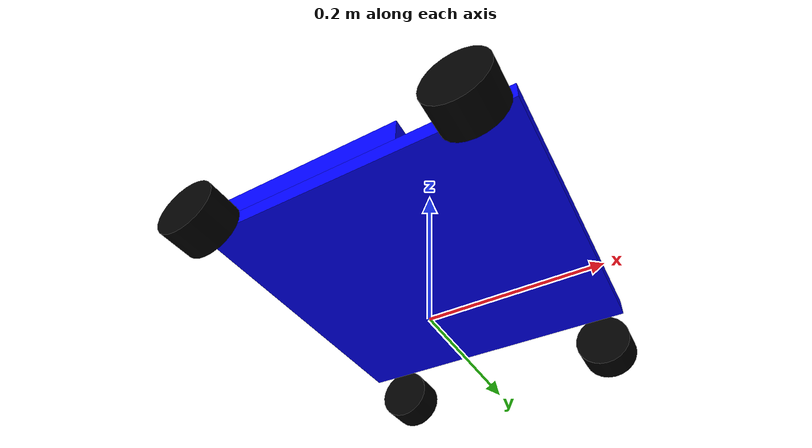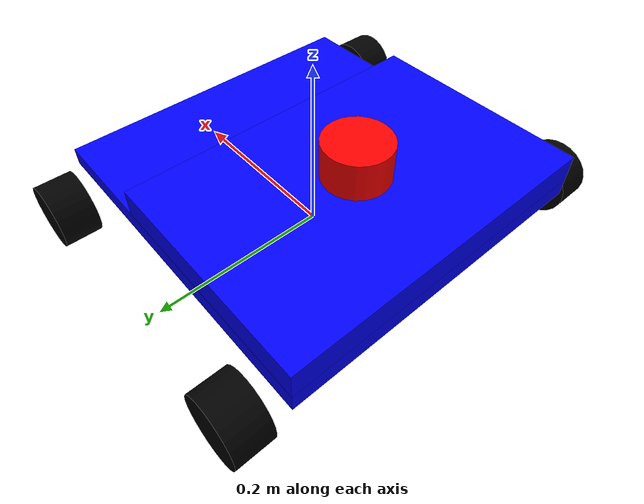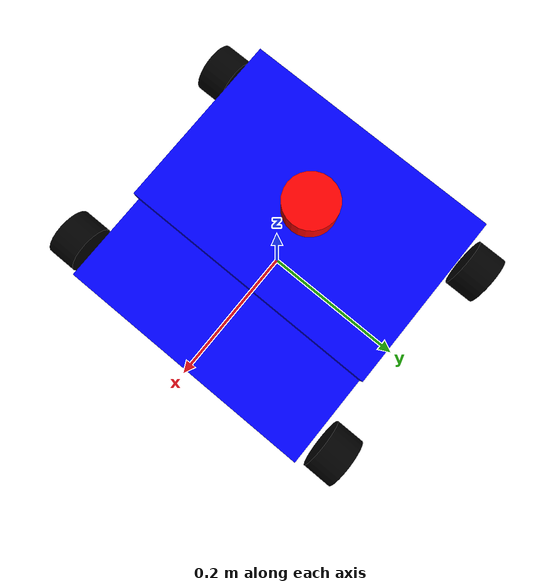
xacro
<?xml version="1.0"?>
<robot xmlns:xacro="http://www.ros.org/wiki/xacro"  name="mangalyaan">
    <!-- Base Plate -->
    <xacro:include filename="base.xacro"/>

    <!-- Wheels -->
    <xacro:include filename="wheels.xacro"/>

    <!-- LIDAR -->
    <xacro:include filename="lidar.xacro"/>

    <!-- ROS Control -->
    <xacro:include filename="ros2_control.xacro"/>

</robot>

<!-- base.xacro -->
<robot xmlns:xacro="http://www.ros.org/wiki/xacro">
  <!-- Variables -->
  <xacro:property name="base_length" value="0.372"/>
  <xacro:property name="base_width" value="0.361"/>
  <xacro:property name="base_height" value="0.02"/>
  <xacro:property name="top_length" value="0.246"/>
  <xacro:property name="top_width" value="0.361"/>
  <xacro:property name="top_height" value="0.03"/>
  <xacro:property name="clearance" value="0.05"/>

  <!-- Base Link -->
  <link name="base_link"/>

  <!-- Base Plate -->
  <joint name="base_joint" type="fixed">
    <origin xyz="0.0 0.0 ${clearance + base_height + 0.01}"/>  <!-- 1cm provided for no clipping -->
    <parent link="base_link"/>
    <child link="base_plate"/>
  </joint>

  <link name="base_plate">
    <inertial>
      <origin xyz="0.0 0.0 -${base_height/2}"/>
      <mass value="0.0"/>
      <inertia ixx="0.0" ixy="0.0" ixz="0.0" iyy="0.0" iyz="0.0" izz="0.0"/>
    </inertial>
    <visual>
      <origin xyz="0.0 0.0 -${base_height/2}"/>
      <geometry>
        <box size="${base_length} ${base_width} ${base_height}"/>
      </geometry>
      <material name="blue">
        <color rgba="0.0 0.0 1.0 1.0"/>
      </material>
    </visual>
    <collision>
      <origin xyz="0.0 0.0 -${base_height/2}"/>
      <geometry>
        <box size="${base_length} ${base_width} ${base_height}"/>
      </geometry>
    </collision>
  </link>

  <!-- Top Plate -->
  <joint name="top_joint" type="fixed">
    <origin xyz="-${base_length/2 - top_length/2} ${base_width/2 - top_width/2} ${top_height}"/>
    <parent link="base_plate"/>
    <child link="top_plate"/>
  </joint>

  <link name="top_plate">
    <inertial>
      <origin xyz="0.0 0.0 -${top_height/2}"/>
      <mass value="0.0"/>
      <inertia ixx="0.0" ixy="0.0" ixz="0.0" iyy="0.0" iyz="0.0" izz="0.0"/>
    </inertial>
    <visual name="">
      <origin xyz="0.0 0.0 -${top_height/2}"/>
      <geometry>
        <box size="${top_length} ${top_width} ${top_height}"/>
      </geometry>
      <material name="blue">
        <color rgba="0.0 0.0 1.0 1.0"/>
        <texture filename=""/>
      </material>
    </visual>
    <collision>
      <origin xyz="0.0 0.0 -${top_height/2}"/>
      <geometry>
        <box size="${top_length} ${top_width} ${top_height}"/>
      </geometry>
    </collision>
  </link>

</robot>

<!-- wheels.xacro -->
<robot xmlns:xacro="http://www.ros.org/wiki/xacro">
  <!-- Variables -->
  <xacro:property name="base_length" value="0.372" />
  <xacro:property name="base_width" value="0.361" />
  <xacro:property name="wheel_radius" value="0.035" />
  <xacro:property name="wheel_width" value="0.04" />
  <xacro:property name="wheel_gap" value="0.01" />

  <!-- Wheel Macro -->
  <xacro:macro name="wheel" params="prefix parent x y z z_sign">
    <joint name="${prefix}_joint" type="continuous">
      <parent link="${parent}"></parent>
      <child link="${prefix}_wheel"></child>
      <origin xyz="${x} ${y} ${z}" rpy="${z_sign * pi/2} 0 0" />
      <axis xyz="0 0 ${-1 * z_sign}" />
    </joint>

    <link name="${prefix}_wheel">
      <visual>
        <geometry>
          <cylinder radius="${wheel_radius}" length="${wheel_width}"/>
        </geometry>
        <material name="black">
          <color rgba="0 0 0 1"/>
        </material>
      </visual>
      <collision>
        <geometry>
          <cylinder radius="${wheel_radius}" length="${wheel_width}"/>
        </geometry>
      </collision>
    <inertial>
      <origin xyz="0 0 ${wheel_radius}"/>
      <mass value="1"/>
      <inertia ixx="0.0" ixy="0.0" ixz="0.0" iyy="0.0" iyz="0.0" izz="0.0"/>
    </inertial>
    </link>
  </xacro:macro>

  <!-- Wheels -->
  <xacro:wheel prefix="top_left" parent="base_plate" x="${base_width/2 - 0.03}" y="${base_length/2 + wheel_gap + wheel_width/2}" z="-0.04" z_sign="1"/>
  <xacro:wheel prefix="top_right" parent="base_plate" x="${base_width/2 - 0.03}" y="-${base_length/2 + wheel_gap + wheel_width/2}" z="-0.04" z_sign="1"/>
  <xacro:wheel prefix="bottom_left" parent="base_plate" x="-${base_width/2 - 0.03}" y="${base_length/2 + wheel_gap + wheel_width/2}" z="-0.04" z_sign="-1"/>
  <xacro:wheel prefix="bottom_right" parent="base_plate" x="-${base_width/2 - 0.03}" y="-${base_length/2 + wheel_gap + wheel_width/2}" z="-0.04" z_sign="-1"/>
</robot>

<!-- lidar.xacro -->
<robot xmlns:xacro="http://www.ros.org/wiki/xacro">
  <!-- Variables -->
  <xacro:property name="lidar_height" value="0.042" />
  <xacro:property name="lidar_radius" value="0.036" />

  <!-- Links -->
  <joint name="lidar_joint" type="fixed">
    <origin xyz="0 0 ${lidar_height/2}"/>
    <parent link="top_plate"/>
    <child link="lidar_link"/>
  </joint>

  <link name="lidar_link">
    <visual>
      <origin xyz="0 0 0"/>
      <geometry>
        <cylinder length="${lidar_height}" radius="${lidar_radius}"/>
      </geometry>
      <material name="red">
        <color rgba="1 0 0 1"/>
      </material>
    </visual>
    <collision>
      <origin xyz="0 0 0"/>
      <geometry>
        <cylinder length="${lidar_height}" radius="${lidar_radius}"/>
      </geometry>
    </collision>
    <inertial>
      <origin xyz="0 0 0"/>
      <mass value="0.1"/>
      <inertia ixx="0.0" ixy="0.0" ixz="0.0" iyy="0.0" iyz="0.0" izz="0.0"/>
    </inertial>
  </link>
  <gazebo reference="lidar_link">
    <material>Gazebo/Red</material>
    <sensor type="ray" name="lidar_sensor">
      <pose>0 0 0 0 0 0</pose>
      <visualize>true</visualize>
      <update_rate>10</update_rate>
      <ray>
        <scan>
          <horizontal>
            <samples>360</samples>
            <resolution>1</resolution>
            <min_angle>-${pi}</min_angle>
            <max_angle>${pi}</max_angle>
          </horizontal>
          <range>
            <min>0.12</min>
            <max>6</max>
          </range>
        </scan>
        <range>
          <min>0.3</min>
          <max>12</max>
          <resolution>0.01</resolution>
        </range>
        <noise>
          <type>gaussian</type>
          <mean>0.0</mean>
          <stddev>0.01</stddev>
        </noise>
      </ray>
      <plugin name="gazebo_ros_lidar" filename="libgazebo_ros_ray_sensor.so">
        <ros>
          <argument> ~/out:=scan </argument>
        </ros>
        <output_type>sensor_msgs/LaserScan</output_type>
        <frame_name>lidar_link</frame_name>
      </plugin>
    </sensor>
  </gazebo>
</robot>
